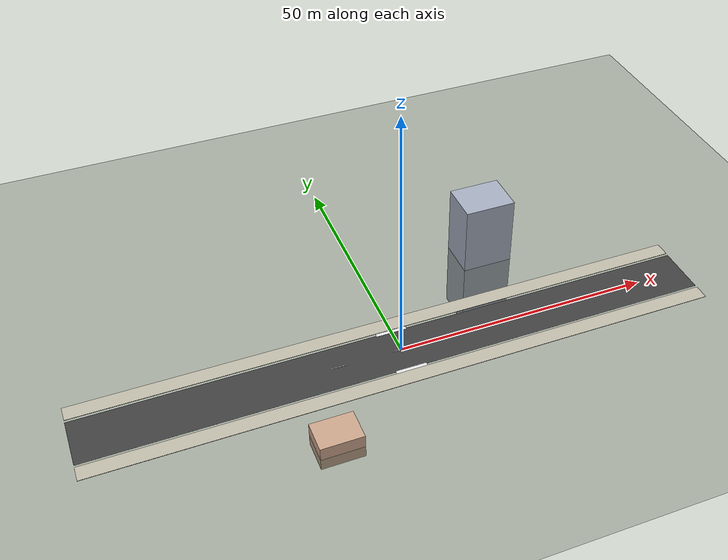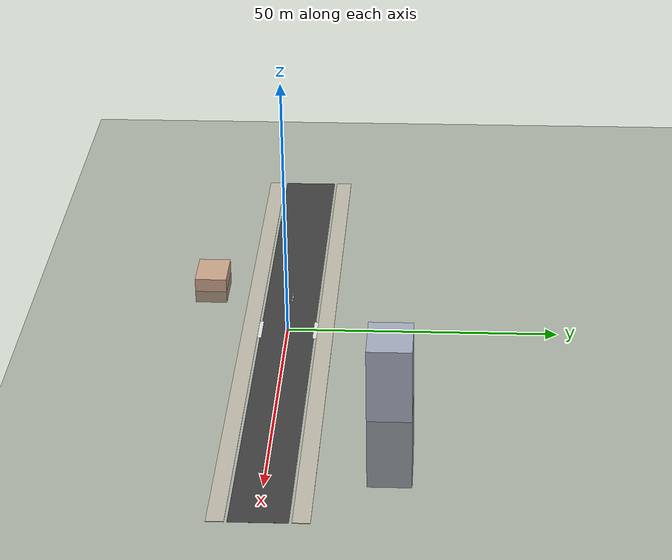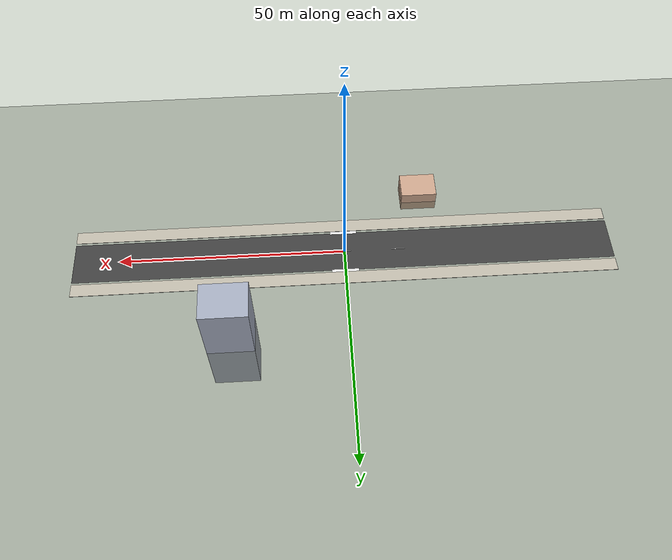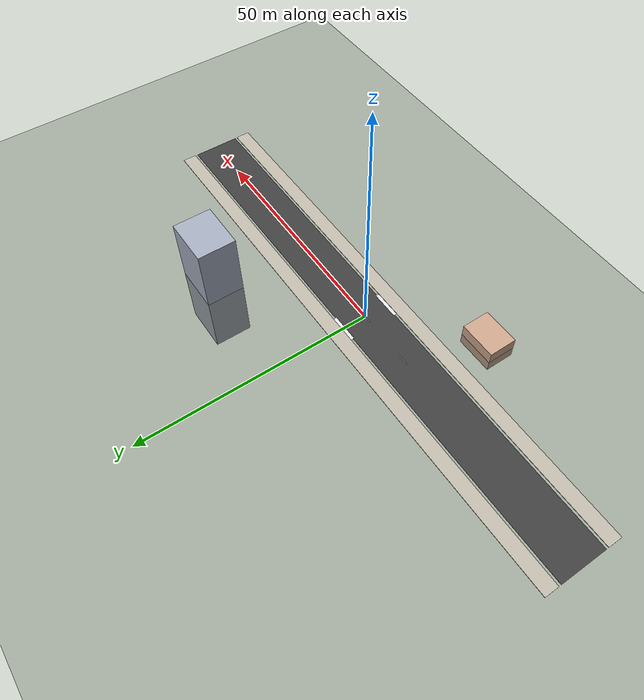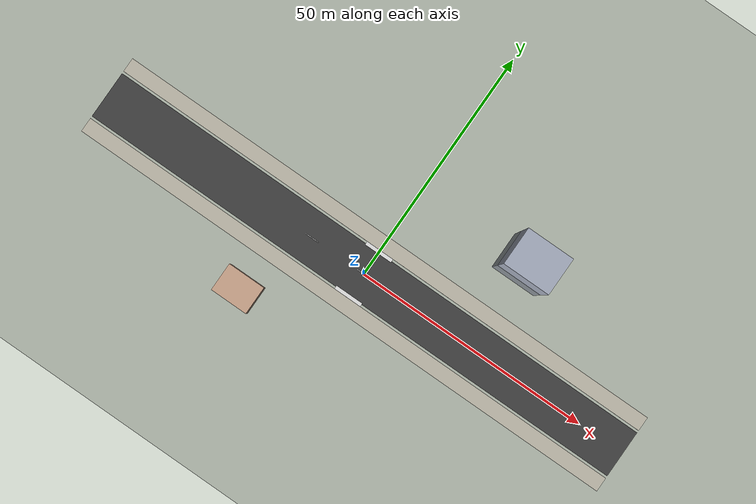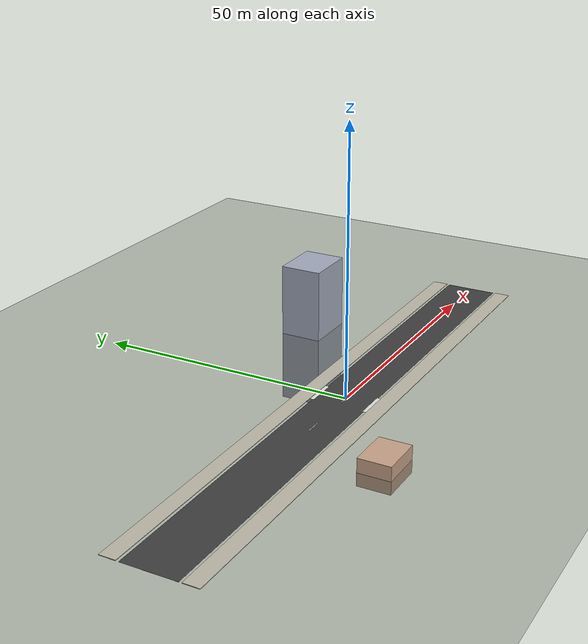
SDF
<sdf version="1.9">
 <world name="sentinel_street">
  <physics type="ode">
   <max_step_size>0.004</max_step_size>
   <real_time_factor>1.0</real_time_factor>
   <real_time_update_rate>250</real_time_update_rate>
  </physics>
  <gravity>0 0 -9.8</gravity>
  <magnetic_field>6e-06 2.3e-05 -4.2e-05</magnetic_field>
  <atmosphere type="adiabatic"/>
  <scene>
   <grid>false</grid>
   <ambient>0.45 0.45 0.45 1</ambient>
   <background>0.55 0.65 0.85 1</background>
   <shadows>false</shadows>
  </scene>
  <model name="ground_plane">
   <static>true</static>
   <link name="link">
    <collision name="collision">
     <geometry><plane><normal>0 0 1</normal><size>1 1</size></plane></geometry>
     <surface><friction><ode><mu>100</mu><mu2>50</mu2></ode></friction></surface>
    </collision>
    <visual name="visual">
     <geometry><plane><normal>0 0 1</normal><size>500 500</size></plane></geometry>
     <material>
      <ambient>0.25 0.28 0.22 1</ambient>
      <diffuse>0.3 0.33 0.27 1</diffuse>
      <specular>0.1 0.1 0.1 1</specular>
     </material>
    </visual>
    <inertial>
     <mass>1</mass>
     <inertia><ixx>1</ixx><ixy>0</ixy><ixz>0</ixz><iyy>1</iyy><iyz>0</iyz><izz>1</izz></inertia>
    </inertial>
   </link>
  </model>
  <model name="road_main">
   <static>true</static>
   <pose>0 0 0.005 0 0 0</pose>
   <link name="link">
    <visual name="visual">
     <geometry><box><size>120 10 0.01</size></box></geometry>
     <material>
      <ambient>0.2 0.2 0.2 1</ambient>
      <diffuse>0.25 0.25 0.25 1</diffuse>
      <specular>0.05 0.05 0.05 1</specular>
     </material>
    </visual>
   </link>
  </model>
  <model name="sidewalk_north">
   <static>true</static>
   <pose>0 7 0.05 0 0 0</pose>
   <link name="link">
    <collision name="collision"><geometry><box><size>120 3 0.1</size></box></geometry></collision>
    <visual name="visual">
     <geometry><box><size>120 3 0.1</size></box></geometry>
     <material><ambient>0.7 0.68 0.62 1</ambient><diffuse>0.75 0.73 0.67 1</diffuse></material>
    </visual>
   </link>
  </model>
  <model name="sidewalk_south">
   <static>true</static>
   <pose>0 -7 0.05 0 0 0</pose>
   <link name="link">
    <collision name="collision"><geometry><box><size>120 3 0.1</size></box></geometry></collision>
    <visual name="visual">
     <geometry><box><size>120 3 0.1</size></box></geometry>
     <material><ambient>0.7 0.68 0.62 1</ambient><diffuse>0.75 0.73 0.67 1</diffuse></material>
    </visual>
   </link>
  </model>
  <model name="lane_mark_1">
   <static>true</static>
   <pose>-12 0 0.01 0 0 0</pose>
   <link name="link">
    <visual name="visual">
     <geometry><box><size>3 0.15 0.01</size></box></geometry>
     <material><ambient>0.9 0.9 0.9 1</ambient><diffuse>0.95 0.95 0.95 1</diffuse></material>
    </visual>
   </link>
  </model>
  <model name="lane_mark_2">
   <static>true</static>
   <pose>0 0 0.01 0 0 0</pose>
   <link name="link">
    <visual name="visual">
     <geometry><box><size>3 0.15 0.01</size></box></geometry>
     <material><ambient>0.9 0.9 0.9 1</ambient><diffuse>0.95 0.95 0.95 1</diffuse></material>
    </visual>
   </link>
  </model>
  <model name="lane_mark_3">
   <static>true</static>
   <pose>12 0 0.01 0 0 0</pose>
   <link name="link">
    <visual name="visual">
     <geometry><box><size>3 0.15 0.01</size></box></geometry>
     <material><ambient>0.9 0.9 0.9 1</ambient><diffuse>0.95 0.95 0.95 1</diffuse></material>
    </visual>
   </link>
  </model>
  <model name="crosswalk_n">
   <static>true</static>
   <pose>0 5.5 0.01 0 0 0</pose>
   <link name="link">
    <visual name="visual">
     <geometry><box><size>6 1.5 0.01</size></box></geometry>
     <material><ambient>0.85 0.85 0.85 1</ambient><diffuse>0.9 0.9 0.9 1</diffuse></material>
    </visual>
   </link>
  </model>
  <model name="crosswalk_s">
   <static>true</static>
   <pose>0 -5.5 0.01 0 0 0</pose>
   <link name="link">
    <visual name="visual">
     <geometry><box><size>6 1.5 0.01</size></box></geometry>
     <material><ambient>0.85 0.85 0.85 1</ambient><diffuse>0.9 0.9 0.9 1</diffuse></material>
    </visual>
   </link>
  </model>
  <model name="building_office">
   <static>true</static>
   <pose>25 20 0 0 0 0</pose>
   <link name="link">
    <collision name="collision"><geometry><box><size>10 8 28</size></box></geometry></collision>
    <visual name="visual">
     <geometry><box><size>10 8 28</size></box></geometry>
     <material>
      <ambient>0.55 0.58 0.65 1</ambient>
      <diffuse>0.65 0.68 0.75 1</diffuse>
      <specular>0.8 0.8 0.85 1</specular>
     </material>
    </visual>
   </link>
  </model>
  <model name="building_shop">
   <static>true</static>
   <pose>-18 -16 0 0 0 0</pose>
   <link name="link">
    <collision name="collision"><geometry><box><size>8 6 5</size></box></geometry></collision>
    <visual name="visual">
     <geometry><box><size>8 6 5</size></box></geometry>
     <material>
      <ambient>0.7 0.55 0.45 1</ambient>
      <diffuse>0.8 0.65 0.55 1</diffuse>
      <specular>0.3 0.3 0.3 1</specular>
     </material>
    </visual>
   </link>
  </model>
  <light name="sun" type="directional">
   <pose>0 0 500 0 0 0</pose>
   <cast_shadows>false</cast_shadows>
   <intensity>1.2</intensity>
   <direction>0.3 0.5 -0.8</direction>
   <diffuse>0.95 0.92 0.85 1</diffuse>
   <specular>0.5 0.5 0.45 1</specular>
   <attenuation><range>2000</range><linear>0</linear><constant>1</constant><quadratic>0</quadratic></attenuation>
  </light>
  <spherical_coordinates>
   <surface_model>EARTH_WGS84</surface_model>
   <world_frame_orientation>ENU</world_frame_orientation>
   <latitude_deg>47.397971057728974</latitude_deg>
   <longitude_deg>8.546163739800146</longitude_deg>
   <elevation>0</elevation>
  </spherical_coordinates>
 </world>
</sdf>
